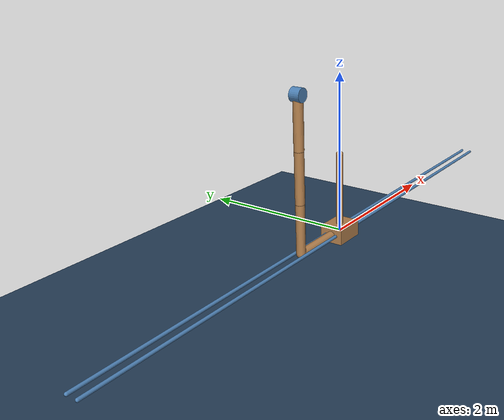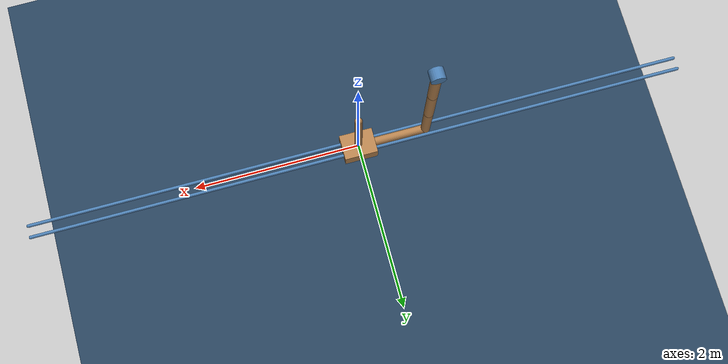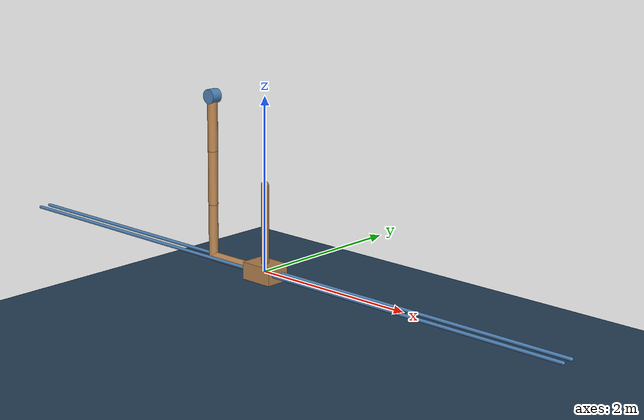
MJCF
<mujoco model="cartpole">

    <visual>
        <headlight ambient=".4 .4 .4" diffuse=".8 .8 .8" specular="0.1 0.1 0.1"/>
        <map znear=".01"/>
        <quality shadowsize="2048"/>
    </visual>

    <asset>
        <texture name="skybox" type="skybox" builtin="gradient" rgb1=".4 .6 .8" rgb2="0 0 0"
                 width="800" height="800" mark="random" markrgb="1 1 1"/>
    </asset>

    <asset>
        <texture name="grid" type="2d" builtin="checker" rgb1=".1 .2 .3" rgb2=".2 .3 .4" width="300" height="300" mark="edge" markrgb=".2 .3 .4"/>
        <material name="grid" texture="grid" texrepeat="1 1" texuniform="true" reflectance=".2"/>
        <material name="self" rgba=".7 .5 .3 1"/>
        <material name="self_default" rgba=".7 .5 .3 1"/>
        <material name="self_highlight" rgba="0 .5 .3 1"/>
        <material name="effector" rgba=".7 .4 .2 1"/>
        <material name="effector_default" rgba=".7 .4 .2 1"/>
        <material name="effector_highlight" rgba="0 .5 .3 1"/>
        <material name="decoration" rgba=".3 .5 .7 1"/>
        <material name="eye" rgba="0 .2 1 1"/>
        <material name="target" rgba=".6 .3 .3 1"/>
        <material name="target_default" rgba=".6 .3 .3 1"/>
        <material name="target_highlight" rgba=".6 .3 .3 .4"/>
    </asset>
    <option timestep="0.01" integrator="Euler">
        <flag contact="disable" energy="enable"/>
    </option>

    <default>
        <default class="pole">
            <joint type="hinge" axis="0 1 0"  damping="2e-4"/>
            <geom type="capsule" fromto="0 0 0 0 0 1" size="0.045" material="self" mass=".1"/>
        </default>
        <default class="finger">
            <site type="ellipsoid" size=".025 .03 .025" rgba=".5 .5 .5 .3" group="3"/>
        </default>
    </default>

    <worldbody>
        <light name="light" pos="0 0 6"/>
        <camera name="fixed" pos="0 -4 1" zaxis="0 -1 0"/>
        <camera name="lookatcart" mode="targetbody" target="cart" pos="0 -2 2"/>
        <geom name="floor" pos="0 0 -1.1" size="4 4 .2" type="plane" material="grid"/>
        <geom name="rail1" type="capsule" pos="0  .07 0" zaxis="1 0 0" size="0.02 4" material="decoration" />
        <geom name="rail2" type="capsule" pos="0 -.07 0" zaxis="1 0 0" size="0.02 4" material="decoration" />

        <body name="proximal" pos="-.83 0 1.89" childclass="finger">
            <geom name="proximal_decoration" type="cylinder" fromto="0 -.066 0 0 .066 0" size=".084" material="decoration" />
            <joint name="proximal" range="-150 -80" axis="0 -1 0" ref="-90" damping="0.05" limited="false" />
            <geom name="proximal" type="capsule" material="self" size=".06" fromto="0 0 0 0 0 -.63"/>
            <body name="distal" pos="0 0 -.63" childclass="finger">
                <joint name="distal" range="-50 50" axis="0 -1 0" damping="0.05" limited="false"/>
                <geom name="distal" type="capsule" size=".058" material="self" fromto="0 0 0 0 0 -.63"/>
                <site name="touchtop" pos=".01 0 -.17"/>
                <site name="touchbottom" pos="-.01 0 -.17"/>
                <body name="distal2" pos="0 0 -.63" childclass="finger">
                    <joint name="distal2" range="-50 50" axis="0 -1 0" damping="0.05" limited="false"/>
                    <geom name="distal2" type="capsule" size=".056" material="self" fromto="0 0 0 0 0 -.63"/>
                    <site name="touchtop2" pos=".01 0 -.17"/>
                    <site name="touchbottom2" pos="-.01 0 -.17"/>
                    <body name="distal3" pos="0 0 -.63" quat="0.707107 0 -0.707107 0" childclass="finger">
                        <joint type="hinge" axis="0 -1 0"  damping="0.05"/>
                        <geom type="capsule" fromto="0 0 0 0 0 -0.63" size="0.054" material="self"/>
                    </body>
                </body>
            </body>
        </body>

        <body name="cart" pos="0 0 0">
            <joint name="slider" type="slide" limited="false" axis="1 0 0" range="-1.8 1.8" solreflimit=".08 1" damping="5e-4"/>
            <geom name="cart" type="box" size="0.2 0.15 0.1" material="self"  mass="1"/>
            <body name="pole_1" pos="0 0 0" childclass="pole">
                <joint type="hinge" axis="0 1 0"  damping="2e-4"/>
                <geom type="capsule" fromto="0 0 0 0 0 1" size="0.045" material="self" mass=".1"/>
            </body>
        </body>
    </worldbody>

    <equality>
        <connect anchor="-0.2 0 0" body1="cart" active="true" body2="distal3" name="equality_constraint" solimp="0 0.9 0.01" solref=".02 1"/>
    </equality>

    <actuator>
        <motor name="proximal" joint="proximal" gear="50" ctrllimited="true" ctrlrange="-1 1"/>
        <motor name="distal" joint="distal" gear="30" ctrllimited="true" ctrlrange="-1 1"/>
        <motor name="distal2" joint="distal2" gear="20" ctrllimited="true" ctrlrange="-1 1"/>
        <motor name="distal3" joint="distal" gear="10" ctrllimited="true" ctrlrange="-1 1"/>
    </actuator>
</mujoco>
